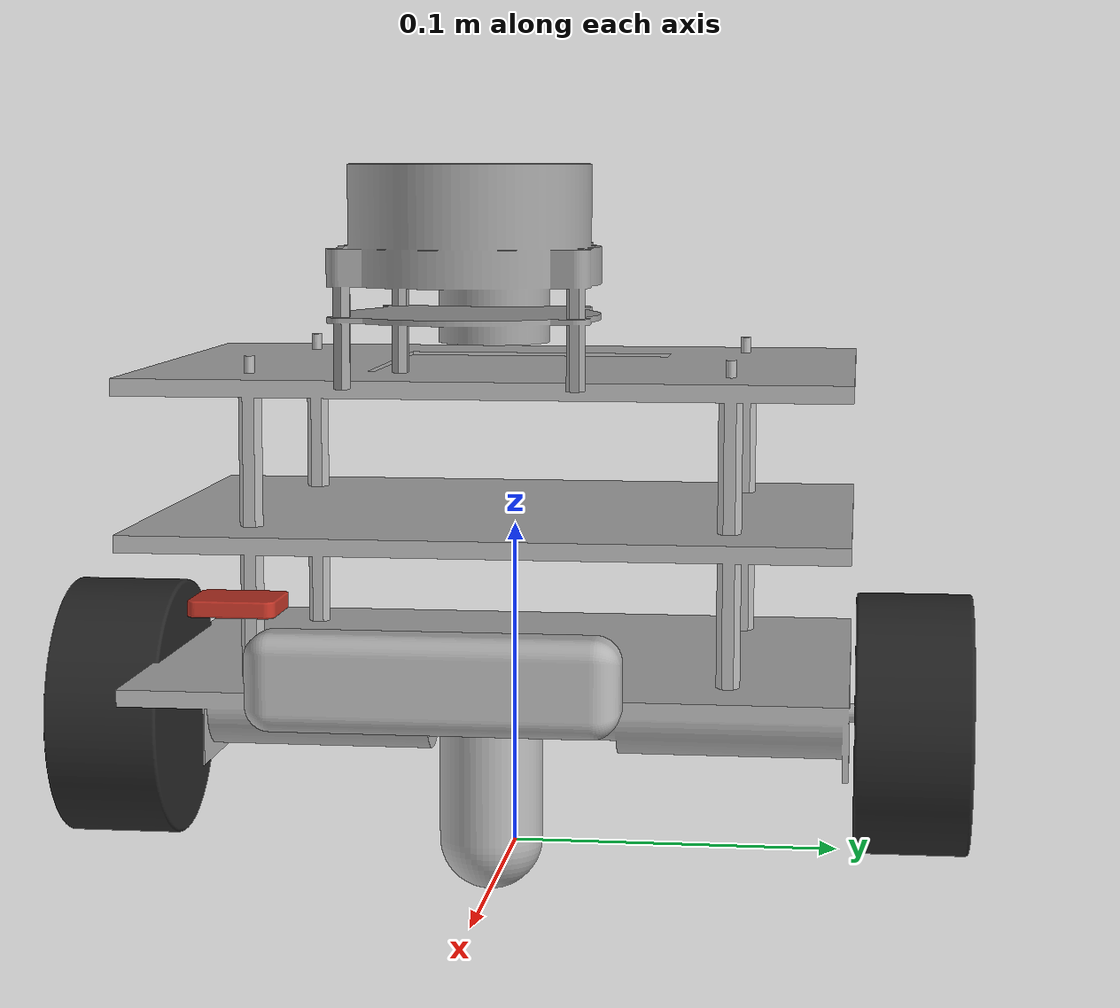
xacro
<?xml version="1.0" ?>
<robot name="autonav" xmlns:xacro="http://www.ros.org/wiki/xacro">

<xacro:include filename="$(find autonav_description)/urdf/materials.xacro" />
<xacro:include filename="$(find autonav_description)/urdf/autonav_gazebo.xacro" />
<xacro:include filename="$(find autonav_description)/urdf/autonav_ros2_control.xacro" />

<link name="base_footprint"/>

<link name="base_link">
  <inertial>
    <origin xyz="0.025038817853430716 -1.1633430423217113e-05 0.0538872479683688" rpy="0 0 0"/>
    <mass value="1.6848865813052847"/>
    <inertia ixx="0.009471" iyy="0.00762" izz="0.010632" ixy="-3e-06" iyz="-0.0" ixz="-0.00066"/>
  </inertial>
  <visual>
    <origin xyz="0 0 0" rpy="0 0 0"/>
    <geometry>
      <mesh filename="package://autonav_description/meshes/base_link.stl" scale="0.001 0.001 0.001"/>
    </geometry>
    <material name="powder_coat_grey"/>
  </visual>
  <collision>
    <origin xyz="0.04 0 0.005" rpy="0 0 0"/>
    <geometry>
      <box size="0.20 0.18 0.01" />
    </geometry>
  </collision>
</link>

<joint name="footprint2baselink" type="fixed">
  <parent link="base_footprint"/>
  <child link="base_link"/>
  <origin xyz="0 0 0" rpy="0 0 0"/>
  <axis xyz="0 0 0"/>
</joint>

<link name="depth_camera_1">
  <inertial>
    <origin xyz="0.013571033223507722 -1.5421816108169115e-15 -1.8457457784393227e-15" rpy="0 0 0"/>
    <mass value="0.05224581939729058"/>
    <inertia ixx="3.8e-05" iyy="5e-06" izz="3.8e-05" ixy="0.0" iyz="-0.0" ixz="0.0"/>
  </inertial>
  <visual>
    <origin xyz="-0.175 0.0 -0.082" rpy="0 0 0"/>
    <geometry>
      <mesh filename="package://autonav_description/meshes/depth_camera_1.stl" scale="0.001 0.001 0.001"/>
    </geometry>
    <material name="paint_enamel_glossy_grey"/>
  </visual>
  <collision>
    <origin xyz="-0.175 0.0 -0.082" rpy="0 0 0"/>
    <geometry>
      <mesh filename="package://autonav_description/meshes/depth_camera_1.stl" scale="0.001 0.001 0.001"/>
    </geometry>
  </collision>
</link>

<link name="right_wheel_1">
  <inertial>
    <origin xyz="-3.3364538596768883e-08 -0.017500170586145114 1.5158223017064376e-08" rpy="0 0 0"/>
    <mass value="0.1635143859009559"/>
    <inertia ixx="8.2e-05" iyy="0.000131" izz="8.2e-05" ixy="-0.0" iyz="-0.0" ixz="-0.0"/>
  </inertial>
  <visual>
    <origin xyz="0.00075 0.105044 -0.04" rpy="0 0 0"/>
    <geometry>
      <mesh filename="package://autonav_description/meshes/right_wheel_1.stl" scale="0.001 0.001 0.001"/>
    </geometry>
    <material name="rubber_soft"/>
  </visual>
  <collision>
    <origin xyz="0.00075 0.105044 -0.04" rpy="0 0 0"/>
    <geometry>
      <mesh filename="package://autonav_description/meshes/right_wheel_1.stl" scale="0.001 0.001 0.001"/>
    </geometry>
  </collision>
</link>

<link name="left_wheel_1">
  <inertial>
    <origin xyz="-1.4750377623972896e-09 0.017500000000000668 2.8030050856775457e-08" rpy="0 0 0"/>
    <mass value="0.1635143859009559"/>
    <inertia ixx="8.2e-05" iyy="0.000131" izz="8.2e-05" ixy="0.0" iyz="0.0" ixz="0.0"/>
  </inertial>
  <visual>
    <origin xyz="0.00075 -0.105 -0.04" rpy="0 0 0"/>
    <geometry>
      <mesh filename="package://autonav_description/meshes/left_wheel_1.stl" scale="0.001 0.001 0.001"/>
    </geometry>
    <material name="rubber_soft"/>
  </visual>
  <collision>
    <origin xyz="0.00075 -0.105 -0.04" rpy="0 0 0"/>
    <geometry>
      <mesh filename="package://autonav_description/meshes/left_wheel_1.stl" scale="0.001 0.001 0.001"/>
    </geometry>
  </collision>
</link>

<link name="lidar_1">
  <inertial>
    <origin xyz="0.026705900429681448 -0.024999999999999415 0.03770114222279286" rpy="0 0 0"/>
    <mass value="1.1515616542314233"/>
    <inertia ixx="0.000489" iyy="0.000861" izz="0.000987" ixy="-0.0" iyz="0.0" ixz="-0.000148"/>
  </inertial>
  <visual>
    <origin xyz="-0.0955 -0.0 -0.196" rpy="0 0 0"/>
    <geometry>
      <mesh filename="package://autonav_description/meshes/lidar_1.stl" scale="0.001 0.001 0.001"/>
    </geometry>
    <material name="steel_satin"/>
  </visual>
  <collision>
    <origin xyz="-0.0955 -0.0 -0.196" rpy="0 0 0"/>
    <geometry>
      <mesh filename="package://autonav_description/meshes/lidar_1.stl" scale="0.001 0.001 0.001"/>
    </geometry>
  </collision>
</link>

<link name="imu_1">
  <inertial>
    <origin xyz="0.008350000000000996 0.009799999999999857 0.002299999999998234" rpy="0 0 0"/>
    <mass value="0.0036264697230680163"/>
    <inertia ixx="0.0" iyy="0.0" izz="0.0" ixy="0.0" iyz="-0.0" ixz="0.0"/>
  </inertial>
  <visual>
    <origin xyz="-0.0675 -0.05 -0.0835" rpy="0 0 0"/>
    <geometry>
      <mesh filename="package://autonav_description/meshes/imu_1.stl" scale="0.001 0.001 0.001"/>
    </geometry>
    <material name="plastic_matte_red"/>
  </visual>
  <collision>
    <origin xyz="-0.0675 -0.05 -0.0835" rpy="0 0 0"/>
    <geometry>
      <mesh filename="package://autonav_description/meshes/imu_1.stl" scale="0.001 0.001 0.001"/>
    </geometry>
  </collision>
</link>

<joint name="base2depth" type="fixed">
  <origin xyz="0.175 0.0 0.082" rpy="0 0 0"/>
  <parent link="base_link"/>
  <child link="depth_camera_1"/>
</joint>

<joint name="base2right" type="continuous">
  <origin xyz="-0.00075 -0.105 0.04" rpy="0 0 0"/>
  <parent link="base_link"/>
  <child link="right_wheel_1"/>
  <axis xyz="-0.0 1.0 0.0"/>
</joint>

<joint name="base2left" type="continuous">
  <origin xyz="-0.00075 0.105 0.04" rpy="0 0 0"/>
  <parent link="base_link"/>
  <child link="left_wheel_1"/>
  <axis xyz="0.0 1.0 -0.0"/>
</joint>

<joint name="base2lidar" type="fixed">
  <origin xyz="0.0955 0.0 0.196" rpy="0 0 0"/>
  <parent link="base_link"/>
  <child link="lidar_1"/>
</joint>

<joint name="base2imu" type="fixed">
  <origin xyz="0.0675 -0.08 0.0835" rpy="0 0 0"/>
  <parent link="base_link"/>
  <child link="imu_1"/>
</joint>

</robot>

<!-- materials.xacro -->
<robot name="autonav" xmlns:xacro="http://www.ros.org/wiki/xacro" >

<material name="silver_default">
  <color rgba="0.700 0.700 0.700 1.000"/>
</material>
<material name="rubber_soft">
  <color rgba="0.15294117647058825 0.15294117647058825 0.15294117647058825 1.0"/>
</material>
<material name="steel_satin">
  <color rgba="0.6274509803921569 0.6274509803921569 0.6274509803921569 1.0"/>
</material>
<material name="plastic_matte_red">
  <color rgba="0.7686274509803922 0.20784313725490197 0.15294117647058825 1.0"/>
</material>
<material name="paint_enamel_glossy_grey">
  <color rgba="0.7019607843137254 0.7019607843137254 0.7019607843137254 1.0"/>
</material>
<material name="powder_coat_grey">
  <color rgba="0.7019607843137254 0.7019607843137254 0.7019607843137254 1.0"/>
</material>
<material name="blue">
  <color rgba="0.1 0.1 0.7 1.0"/>
</material>
<material name="black">
  <color rgba="0.4 0.35 0.38 1.0"/>
</material>

</robot>

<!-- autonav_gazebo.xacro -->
<robot name="autonav" xmlns:xacro="http://ros.org/wiki/xacro">

<xacro:property name="base_link" value="Gazebo/FlatBlack" />
<xacro:property name="wheels" value="Gazebo/Black" />
<xacro:property name="imu" value="Gazebo/PurpleGlow" />
<xacro:property name="lidar" value="Gazebo/BlueGlow" />
<xacro:property name="depth_cam" value="Gazebo/TurquoiseGlow" />

  <transmission name="wheel_right_transmission">
    <plugin>transmission_interface/SimpleTransmission</plugin>
    <actuator name="wheel_right_motor" role="actuator_right"/>
    <joint name="base2right"    role="joint_right">
      <mechanical_reduction>1.0</mechanical_reduction>
    </joint>
  </transmission>

  <transmission name="wheel_left_transmission">
    <plugin>transmission_interface/SimpleTransmission</plugin>
    <actuator name="wheel_left_motor" role="actuator_left"/>
    <joint name="base2left"    role="joint_left">
      <mechanical_reduction>1.0</mechanical_reduction>
    </joint>
  </transmission>

  <!-- Wheels -->
  <gazebo reference="left_wheel_1">
    <material>${wheels}</material>
    <mu1>1000000000000000.0</mu1>
    <mu2>1000000000000000.0</mu2>
    <kp>1000000000000.0</kp>
    <kd>10.0</kd>
    <minDepth>0.001</minDepth>
    <maxVel>0.1</maxVel>
    <fdir1>1 0 0</fdir1>
  </gazebo>

  <gazebo reference="right_wheel_1">
    <material>${wheels}</material>
    <mu1>1000000000000000.0</mu1>
    <mu2>1000000000000000.0</mu2>
    <kp>1000000000000.0</kp>
    <kd>10.0</kd>
    <minDepth>0.001</minDepth>
    <maxVel>0.1</maxVel>
    <fdir1>1 0 0</fdir1>
  </gazebo>

  <!-- Caster Wheels -->
  <gazebo reference="base_link">
    <material>${base_link}</material>
    <mu1>0.1</mu1>
    <mu2>0.1</mu2>
    <kp>1000000.0</kp>
    <kd>100.0</kd>
    <minDepth>0.001</minDepth>
    <maxVel>1.0</maxVel>
  </gazebo>

  <gazebo reference="camera_link">
    <material>${depth_cam}</material>
    <mu1>0.1</mu1>
    <mu2>0.1</mu2>
    <kp>1000000.0</kp>
    <kd>100.0</kd>
    <minDepth>0.001</minDepth>
    <maxVel>1.0</maxVel>
  </gazebo>

  <gazebo reference="lidar_1">
    <material>${lidar}</material>
    <mu1>0.1</mu1>
    <mu2>0.1</mu2>
    <kp>1000000.0</kp>
    <kd>100.0</kd>
    <minDepth>0.001</minDepth>
    <maxVel>1.0</maxVel>
  </gazebo>

  <gazebo reference="imu_1">
    <material>${imu}</material>
    <mu1>0.1</mu1>
    <mu2>0.1</mu2>
    <kp>1000000.0</kp>
    <kd>100.0</kd>
    <minDepth>0.001</minDepth>
    <maxVel>1.0</maxVel>
  </gazebo>

  <gazebo>
    <plugin name="diff_drive_control" filename="libgazebo_ros_diff_drive.so">

      <!-- Update rate in Hz -->
      <update_rate>50</update_rate>

      <!-- wheels -->
      <left_joint>base2left</left_joint>
      <right_joint>base2right</right_joint>

      <!-- kinematics -->
      <wheel_separation>0.21</wheel_separation>
      <wheel_diameter>0.08</wheel_diameter>

      <!-- input -->
      <command_topic>cmd_vel</command_topic>

      <!-- output -->
      <publish_odom>true</publish_odom>
      <publish_odom_tf>true</publish_odom_tf>
      <publish_wheel_tf>true</publish_wheel_tf>

      <odometry_topic>odom</odometry_topic>
      <odometry_frame>odom</odometry_frame>
      <robot_base_frame>base_footprint</robot_base_frame>

    </plugin>
  </gazebo>

  <gazebo reference="imu_1">
    <gravity>true</gravity>
    <sensor name="imu_1" type="imu">
      <always_on>true</always_on>
      <update_rate>30</update_rate>
      <visualize>true</visualize>
      <plugin name="my_imu_plugin" filename="libgazebo_ros_imu_sensor.so">
        <ros>
          <remapping>~/out:=imu</remapping>
        </ros>
        <frame_name>imu_1</frame_name>
      </plugin>
    </sensor>
  </gazebo>

  <gazebo reference="lidar_1">
    <sensor type="ray" name="head_hokuyo_sensor">
      <pose>0 0 0 0 0 0</pose>
      <visualize>false</visualize>
      <update_rate>30</update_rate>
      <ray>
        <scan>
          <horizontal>
            <samples>300</samples>
            <resolution>1</resolution>
            <min_angle>-3.14</min_angle>
            <max_angle>3.14</max_angle>
          </horizontal>
        </scan>
        <range>
          <min>0.10</min>
          <max>30.0</max>
          <resolution>0.01</resolution>
        </range>
        <noise>
          <type>gaussian</type>
          <mean>0.0</mean>
          <stddev>0.01</stddev>
        </noise>
      </ray>
      <plugin name="my_ray_sensor_plugin" filename="libgazebo_ros_ray_sensor.so">
        <ros>
          <!-- Configure namespace and remap to publish to /ray/pointcloud2 -->
          <remapping>~/out:=scan</remapping>
        </ros>
        <!-- Output as a PointCloud2, see above for other types -->
        <output_type>sensor_msgs/LaserScan</output_type>
        <!-- Clip intensity values so all are above 100, optional -->
        <min_intensity>100.0</min_intensity>
        <!-- Frame id for header of output, defaults to sensor's parent link name -->
        <frame_name>lidar_1</frame_name>
      </plugin>
    </sensor>
  </gazebo>

  <gazebo reference="camera_link">
    <sensor name="camera" type="depth">
      <pose> 0 0 0 0 0 0</pose>
      <visualize>true</visualize>
      <update_rate>60.0</update_rate>
      <camera name="camera_link">
        <horizontal_fov>1.047198</horizontal_fov>
        <image>
          <width>640</width>
          <height>480</height>
          <format>R8G8B8</format>
        </image>
        <clip>
          <near>0.05</near>
          <far>50</far>
        </clip>
      </camera>
      <plugin name="depth_camera_controller" filename="libgazebo_ros_camera.so">
        <baseline>0.2</baseline>
        <alwaysOn>true</alwaysOn>
        <updateRate>0.0</updateRate>
        <frame_name>camera_link_1</frame_name>
        <pointCloudCutoff>0.1</pointCloudCutoff>
        <pointCloudCutoffMax>50.0</pointCloudCutoffMax>
        <distortionK1>0</distortionK1>
        <distortionK2>0</distortionK2>
        <distortionK3>0</distortionK3>
        <distortionT1>0</distortionT1>
        <distortionT2>0</distortionT2>
        <CxPrime>0</CxPrime>
        <Cx>0</Cx>
        <Cy>0</Cy>
        <focalLength>0</focalLength>
        <hackBaseline>0</hackBaseline>
      </plugin>
    </sensor>
  </gazebo>

</robot>
